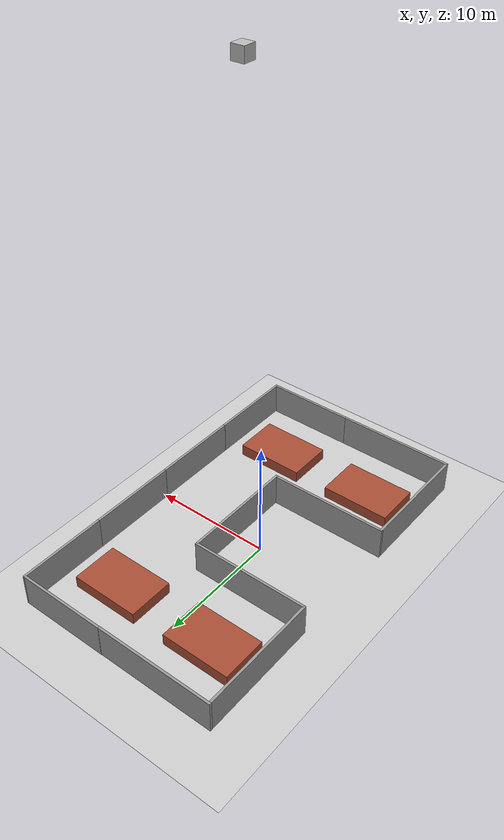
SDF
<sdf version="1.6">
 <world name="default">
  <plugin name="ros_link_attacher_plugin" filename="libgazebo_ros_link_attacher.so"/>
  <light name="sun" type="directional">
   <pose>0 0 10 0 -0 0</pose>
   <diffuse>0.8 0.8 0.8 1</diffuse>
   <specular>0.2 0.2 0.2 1</specular>
   <attenuation>
    <range>1000</range>
    <constant>0.9</constant>
    <linear>0.01</linear>
    <quadratic>0.001</quadratic>
   </attenuation>
   <direction>-0.5 0.1 -0.9</direction>
  </light>
  <model name="ground_plane">
   <static>1</static>
   <link name="link">
    <collision name="collision">
     <geometry><plane><normal>0 0 1</normal><size>100 100</size></plane></geometry>
     <surface>
      <contact><collide_bitmask>65535</collide_bitmask></contact>
      <friction><ode><mu>100</mu><mu2>50</mu2></ode></friction>
     </surface>
    </collision>
    <visual name="visual">
     <cast_shadows>0</cast_shadows>
     <geometry><plane><normal>0 0 1</normal><size>100 100</size></plane></geometry>
     <material>
      <script><uri>file://media/materials/scripts/gazebo.material</uri><name>Gazebo/Grey</name></script>
     </material>
    </visual>
   </link>
  </model>
  <gravity>0 0 -9.8</gravity>
  <magnetic_field>6e-06 2.3e-05 -4.2e-05</magnetic_field>
  <atmosphere type="adiabatic"/>
  <physics name="default_physics" default="0" type="ode">
   <max_step_size>0.001</max_step_size>
   <real_time_factor>1</real_time_factor>
   <real_time_update_rate>1000</real_time_update_rate>
  </physics>
  <scene><ambient>0.4 0.4 0.4 1</ambient><background>0.7 0.7 0.7 1</background><shadows>1</shadows></scene>
  <spherical_coordinates>
   <surface_model>EARTH_WGS84</surface_model>
   <latitude_deg>0</latitude_deg>
   <longitude_deg>0</longitude_deg>
   <elevation>0</elevation>
   <heading_deg>0</heading_deg>
  </spherical_coordinates>
  <model name="camera">
   <plugin name="ros_camera_1" filename="libROSLogicalCameraPlugin.so"/>
   <link name="camera::camera_link">
    <gravity>0</gravity>
    <inertial>
     <mass>0.1</mass>
     <inertia>
      <ixx>0.000166667</ixx>
      <iyy>0.000166667</iyy>
      <izz>0.000166667</izz>
      <ixy>0</ixy>
      <ixz>0</ixz>
      <iyz>0</iyz>
     </inertia>
    </inertial>
    <collision name="collision">
     <pose>0 0.02 0 0 0 -1.5708</pose>
     <geometry><box><size>1 1 1</size></box></geometry>
    </collision>
    <visual name="visual">
     <pose>0 0.02 0 0 0 -1.5708</pose>
     <geometry><box><size>1 1 1</size></box></geometry>
    </visual>
    <sensor name="logical_camera" type="logical_camera">
     <logical_camera>
      <near>0.2</near>
      <far>2</far>
      <horizontal_fov>0.9</horizontal_fov>
      <aspect_ratio>2</aspect_ratio>
     </logical_camera>
     <visualize>0</visualize>
     <always_on>1</always_on>
     <update_rate>10</update_rate>
     <topic>camera_1</topic>
    </sensor>
    <sensor name="camera" type="camera">
     <camera name="camera">
      <horizontal_fov>0.9</horizontal_fov>
      <image><width>1280</width><height>720</height></image>
      <clip><near>0.1</near><far>100</far></clip>
     </camera>
     <always_on>1</always_on>
     <update_rate>30</update_rate>
     <visualize>0</visualize>
     <plugin name="camera_controller" filename="libgazebo_ros_camera.so">
      <cameraName>camera_1</cameraName>
      <eventThreshold>10</eventThreshold>
      <cameraInfoTopicName>camera</cameraInfoTopicName>
     </plugin>
    </sensor>
    <pose>1.6102 -0.1089 38 3.14 1.57 3.14</pose>
   </link>
   <static>1</static>
  </model>
  <model name="grey_wall_1">
   <static>1</static>
   <link name="link">
    <pose>0 0 1.4 0 -0 0</pose>
    <collision name="collision"><geometry><box><size>7.5 0.2 2.8</size></box></geometry></collision>
    <visual name="visual">
     <cast_shadows>0</cast_shadows>
     <geometry><box><size>7.5 0.2 2.8</size></box></geometry>
     <material>
      <script>
       <uri>model://grey_wall/materials/scripts</uri>
       <uri>model://grey_wall/materials/textures</uri>
       <name>vrc/grey_wall</name>
      </script>
     </material>
    </visual>
   </link>
   <pose>6.09406 14.8892 0 0 -0 0</pose>
  </model>
  <model name="grey_wall_2">
   <static>1</static>
   <link name="link">
    <pose>0 0 1.4 0 -0 0</pose>
    <collision name="collision"><geometry><box><size>7.5 0.2 2.8</size></box></geometry></collision>
    <visual name="visual">
     <cast_shadows>0</cast_shadows>
     <geometry><box><size>7.5 0.2 2.8</size></box></geometry>
     <material>
      <script>
       <uri>model://grey_wall/materials/scripts</uri>
       <uri>model://grey_wall/materials/textures</uri>
       <name>vrc/grey_wall</name>
      </script>
     </material>
    </visual>
   </link>
   <pose>9.88422 3.73107 0 0 0 -1.5708</pose>
  </model>
  <model name="grey_wall_3">
   <static>1</static>
   <link name="link">
    <pose>0 0 1.4 0 -0 0</pose>
    <collision name="collision"><geometry><box><size>7.5 0.2 2.8</size></box></geometry></collision>
    <visual name="visual">
     <cast_shadows>0</cast_shadows>
     <geometry><box><size>7.5 0.2 2.8</size></box></geometry>
     <material>
      <script>
       <uri>model://grey_wall/materials/scripts</uri>
       <uri>model://grey_wall/materials/textures</uri>
       <name>vrc/grey_wall</name>
      </script>
     </material>
    </visual>
   </link>
   <pose>9.88361 -3.76988 0 0 0 -1.5708</pose>
  </model>
  <model name="grey_wall_4">
   <static>1</static>
   <link name="link">
    <pose>0 0 1.4 0 -0 0</pose>
    <collision name="collision"><geometry><box><size>7.5 0.2 2.8</size></box></geometry></collision>
    <visual name="visual">
     <cast_shadows>0</cast_shadows>
     <geometry><box><size>7.5 0.2 2.8</size></box></geometry>
     <material>
      <script>
       <uri>model://grey_wall/materials/scripts</uri>
       <uri>model://grey_wall/materials/textures</uri>
       <name>vrc/grey_wall</name>
      </script>
     </material>
    </visual>
   </link>
   <pose>9.88377 -11.2734 0 0 0 -1.5708</pose>
  </model>
  <model name="grey_wall_5">
   <static>1</static>
   <link name="link">
    <pose>0 0 1.4 0 -0 0</pose>
    <collision name="collision"><geometry><box><size>7.5 0.2 2.8</size></box></geometry></collision>
    <visual name="visual">
     <cast_shadows>0</cast_shadows>
     <geometry><box><size>7.5 0.2 2.8</size></box></geometry>
     <material>
      <script>
       <uri>model://grey_wall/materials/scripts</uri>
       <uri>model://grey_wall/materials/textures</uri>
       <name>vrc/grey_wall</name>
      </script>
     </material>
    </visual>
   </link>
   <pose>9.88758 11.2327 0 0 0 -1.5708</pose>
  </model>
  <model name="grey_wall_6">
   <static>1</static>
   <link name="link">
    <pose>0 0 1.4 0 -0 0</pose>
    <collision name="collision"><geometry><box><size>7.5 0.2 2.8</size></box></geometry></collision>
    <visual name="visual">
     <cast_shadows>0</cast_shadows>
     <geometry><box><size>7.5 0.2 2.8</size></box></geometry>
     <material>
      <script>
       <uri>model://grey_wall/materials/scripts</uri>
       <uri>model://grey_wall/materials/textures</uri>
       <name>vrc/grey_wall</name>
      </script>
     </material>
    </visual>
   </link>
   <pose>6.05241 -14.9248 0 0 -0 0</pose>
  </model>
  <model name="grey_wall_10_cm_1">
   <link name="link">
    <pose>0 0 1.4 0 -0 0</pose>
    <inertial>
     <mass>1</mass>
     <inertia><ixx>1</ixx><ixy>0</ixy><ixz>0</ixz><iyy>1</iyy><iyz>0</iyz><izz>1</izz></inertia>
    </inertial>
    <visual name="visual">
     <cast_shadows>0</cast_shadows>
     <geometry><box><size>9.8 0.2 2.8</size></box></geometry>
     <material>
      <script>
       <uri>model://grey_wall/materials/scripts</uri>
       <uri>model://grey_wall/materials/textures</uri>
       <name>vrc/grey_wall</name>
      </script>
      <shader type="pixel"><normal_map>__default__</normal_map></shader>
      <ambient>1 1 1 1</ambient>
      <diffuse>1 1 1 1</diffuse>
      <specular>0 0 0 1</specular>
      <emissive>0 0 0 1</emissive>
     </material>
    </visual>
    <collision name="collision">
     <geometry><box><size>9.8 0.2 2.8</size></box></geometry>
     <surface>
      <friction>
       <ode><mu>1</mu><mu2>1</mu2><fdir1>0 0 0</fdir1><slip1>0</slip1><slip2>0</slip2></ode>
       <torsional>
        <coefficient>1</coefficient>
        <patch_radius>0</patch_radius>
        <surface_radius>0</surface_radius>
        <use_patch_radius>1</use_patch_radius>
        <ode><slip>0</slip></ode>
       </torsional>
      </friction>
      <bounce><restitution_coefficient>0</restitution_coefficient><threshold>1e+06</threshold></bounce>
      <contact>
       <collide_without_contact>0</collide_without_contact>
       <collide_without_contact_bitmask>1</collide_without_contact_bitmask>
       <collide_bitmask>1</collide_bitmask>
       <ode>
        <soft_cfm>0</soft_cfm>
        <soft_erp>0.2</soft_erp>
        <kp>1e+13</kp>
        <kd>1</kd>
        <max_vel>0.01</max_vel>
        <min_depth>0</min_depth>
       </ode>
       <bullet>
        <split_impulse>1</split_impulse>
        <split_impulse_penetration_threshold>-0.01</split_impulse_penetration_threshold>
        <soft_cfm>0</soft_cfm>
        <soft_erp>0.2</soft_erp>
        <kp>1e+13</kp>
        <kd>1</kd>
       </bullet>
      </contact>
     </surface>
    </collision>
   </link>
   <static>1</static>
   <pose>2.3616 -0.279039 0 0 0 -1.5708</pose>
  </model>
  <model name="grey_wall_10_cm_2">
   <link name="link">
    <pose>0 0 1.4 0 -0 0</pose>
    <inertial>
     <mass>1</mass>
     <inertia><ixx>1</ixx><ixy>0</ixy><ixz>0</ixz><iyy>1</iyy><iyz>0</iyz><izz>1</izz></inertia>
    </inertial>
    <visual name="visual">
     <cast_shadows>0</cast_shadows>
     <geometry><box><size>10.25 0.2 2.8</size></box></geometry>
     <material>
      <script>
       <uri>model://grey_wall/materials/scripts</uri>
       <uri>model://grey_wall/materials/textures</uri>
       <name>vrc/grey_wall</name>
      </script>
      <shader type="pixel"><normal_map>__default__</normal_map></shader>
      <ambient>1 1 1 1</ambient>
      <diffuse>1 1 1 1</diffuse>
      <specular>0 0 0 1</specular>
      <emissive>0 0 0 1</emissive>
     </material>
    </visual>
    <collision name="collision">
     <geometry><box><size>10.25 0.2 2.8</size></box></geometry>
     <surface>
      <friction>
       <ode><mu>1</mu><mu2>1</mu2><fdir1>0 0 0</fdir1><slip1>0</slip1><slip2>0</slip2></ode>
       <torsional>
        <coefficient>1</coefficient>
        <patch_radius>0</patch_radius>
        <surface_radius>0</surface_radius>
        <use_patch_radius>1</use_patch_radius>
        <ode><slip>0</slip></ode>
       </torsional>
      </friction>
      <bounce><restitution_coefficient>0</restitution_coefficient><threshold>1e+06</threshold></bounce>
      <contact>
       <collide_without_contact>0</collide_without_contact>
       <collide_without_contact_bitmask>1</collide_without_contact_bitmask>
       <collide_bitmask>1</collide_bitmask>
       <ode>
        <soft_cfm>0</soft_cfm>
        <soft_erp>0.2</soft_erp>
        <kp>1e+13</kp>
        <kd>1</kd>
        <max_vel>0.01</max_vel>
        <min_depth>0</min_depth>
       </ode>
       <bullet>
        <split_impulse>1</split_impulse>
        <split_impulse_penetration_threshold>-0.01</split_impulse_penetration_threshold>
        <soft_cfm>0</soft_cfm>
        <soft_erp>0.2</soft_erp>
        <kp>1e+13</kp>
        <kd>1</kd>
       </bullet>
      </contact>
     </surface>
    </collision>
   </link>
   <static>1</static>
   <pose>-7.5361 9.66485 0 0 0 -1.5708</pose>
  </model>
  <model name="grey_wall_10_cm_3">
   <link name="link">
    <pose>0 0 1.4 0 -0 0</pose>
    <inertial>
     <mass>1</mass>
     <inertia><ixx>1</ixx><ixy>0</ixy><ixz>0</ixz><iyy>1</iyy><iyz>0</iyz><izz>1</izz></inertia>
    </inertial>
    <visual name="visual">
     <cast_shadows>0</cast_shadows>
     <geometry><box><size>10 0.2 2.8</size></box></geometry>
     <material>
      <script>
       <uri>model://grey_wall/materials/scripts</uri>
       <uri>model://grey_wall/materials/textures</uri>
       <name>vrc/grey_wall</name>
      </script>
      <shader type="pixel"><normal_map>__default__</normal_map></shader>
      <ambient>1 1 1 1</ambient>
      <diffuse>1 1 1 1</diffuse>
      <specular>0 0 0 1</specular>
      <emissive>0 0 0 1</emissive>
     </material>
    </visual>
    <collision name="collision">
     <geometry><box><size>10 0.2 2.8</size></box></geometry>
     <surface>
      <friction>
       <ode><mu>1</mu><mu2>1</mu2><fdir1>0 0 0</fdir1><slip1>0</slip1><slip2>0</slip2></ode>
       <torsional>
        <coefficient>1</coefficient>
        <patch_radius>0</patch_radius>
        <surface_radius>0</surface_radius>
        <use_patch_radius>1</use_patch_radius>
        <ode><slip>0</slip></ode>
       </torsional>
      </friction>
      <bounce><restitution_coefficient>0</restitution_coefficient><threshold>1e+06</threshold></bounce>
      <contact>
       <collide_without_contact>0</collide_without_contact>
       <collide_without_contact_bitmask>1</collide_without_contact_bitmask>
       <collide_bitmask>1</collide_bitmask>
       <ode>
        <soft_cfm>0</soft_cfm>
        <soft_erp>0.2</soft_erp>
        <kp>1e+13</kp>
        <kd>1</kd>
        <max_vel>0.01</max_vel>
        <min_depth>0</min_depth>
       </ode>
       <bullet>
        <split_impulse>1</split_impulse>
        <split_impulse_penetration_threshold>-0.01</split_impulse_penetration_threshold>
        <soft_cfm>0</soft_cfm>
        <soft_erp>0.2</soft_erp>
        <kp>1e+13</kp>
        <kd>1</kd>
       </bullet>
      </contact>
     </surface>
    </collision>
   </link>
   <static>1</static>
   <pose>-2.64541 14.8608 0 0 0 -3.139</pose>
  </model>
  <model name="grey_wall_10_cm_4">
   <link name="link">
    <pose>0 0 1.4 0 -0 0</pose>
    <inertial>
     <mass>1</mass>
     <inertia><ixx>1</ixx><ixy>0</ixy><ixz>0</ixz><iyy>1</iyy><iyz>0</iyz><izz>1</izz></inertia>
    </inertial>
    <visual name="visual">
     <cast_shadows>0</cast_shadows>
     <geometry><box><size>10 0.2 2.8</size></box></geometry>
     <material>
      <script>
       <uri>model://grey_wall/materials/scripts</uri>
       <uri>model://grey_wall/materials/textures</uri>
       <name>vrc/grey_wall</name>
      </script>
      <shader type="pixel"><normal_map>__default__</normal_map></shader>
      <ambient>1 1 1 1</ambient>
      <diffuse>1 1 1 1</diffuse>
      <specular>0 0 0 1</specular>
      <emissive>0 0 0 1</emissive>
     </material>
    </visual>
    <collision name="collision">
     <geometry><box><size>10 0.2 2.8</size></box></geometry>
     <surface>
      <friction>
       <ode><mu>1</mu><mu2>1</mu2><fdir1>0 0 0</fdir1><slip1>0</slip1><slip2>0</slip2></ode>
       <torsional>
        <coefficient>1</coefficient>
        <patch_radius>0</patch_radius>
        <surface_radius>0</surface_radius>
        <use_patch_radius>1</use_patch_radius>
        <ode><slip>0</slip></ode>
       </torsional>
      </friction>
      <bounce><restitution_coefficient>0</restitution_coefficient><threshold>1e+06</threshold></bounce>
      <contact>
       <collide_without_contact>0</collide_without_contact>
       <collide_without_contact_bitmask>1</collide_without_contact_bitmask>
       <collide_bitmask>1</collide_bitmask>
       <ode>
        <soft_cfm>0</soft_cfm>
        <soft_erp>0.2</soft_erp>
        <kp>1e+13</kp>
        <kd>1</kd>
        <max_vel>0.01</max_vel>
        <min_depth>0</min_depth>
       </ode>
       <bullet>
        <split_impulse>1</split_impulse>
        <split_impulse_penetration_threshold>-0.01</split_impulse_penetration_threshold>
        <soft_cfm>0</soft_cfm>
        <soft_erp>0.2</soft_erp>
        <kp>1e+13</kp>
        <kd>1</kd>
       </bullet>
      </contact>
     </surface>
    </collision>
   </link>
   <static>1</static>
   <pose>-7.62656 -10.0466 0 0 0 -1.5708</pose>
  </model>
  <model name="grey_wall_10_cm_5">
   <link name="link">
    <pose>0 0 1.4 0 -0 0</pose>
    <inertial>
     <mass>1</mass>
     <inertia><ixx>1</ixx><ixy>0</ixy><ixz>0</ixz><iyy>1</iyy><iyz>0</iyz><izz>1</izz></inertia>
    </inertial>
    <visual name="visual">
     <cast_shadows>0</cast_shadows>
     <geometry><box><size>10 0.2 2.8</size></box></geometry>
     <material>
      <script>
       <uri>model://grey_wall/materials/scripts</uri>
       <uri>model://grey_wall/materials/textures</uri>
       <name>vrc/grey_wall</name>
      </script>
      <shader type="pixel"><normal_map>__default__</normal_map></shader>
      <ambient>1 1 1 1</ambient>
      <diffuse>1 1 1 1</diffuse>
      <specular>0 0 0 1</specular>
      <emissive>0 0 0 1</emissive>
     </material>
    </visual>
    <collision name="collision">
     <geometry><box><size>10 0.2 2.8</size></box></geometry>
     <surface>
      <friction>
       <ode><mu>1</mu><mu2>1</mu2><fdir1>0 0 0</fdir1><slip1>0</slip1><slip2>0</slip2></ode>
       <torsional>
        <coefficient>1</coefficient>
        <patch_radius>0</patch_radius>
        <surface_radius>0</surface_radius>
        <use_patch_radius>1</use_patch_radius>
        <ode><slip>0</slip></ode>
       </torsional>
      </friction>
      <bounce><restitution_coefficient>0</restitution_coefficient><threshold>1e+06</threshold></bounce>
      <contact>
       <collide_without_contact>0</collide_without_contact>
       <collide_without_contact_bitmask>1</collide_without_contact_bitmask>
       <collide_bitmask>1</collide_bitmask>
       <ode>
        <soft_cfm>0</soft_cfm>
        <soft_erp>0.2</soft_erp>
        <kp>1e+13</kp>
        <kd>1</kd>
        <max_vel>0.01</max_vel>
        <min_depth>0</min_depth>
       </ode>
       <bullet>
        <split_impulse>1</split_impulse>
        <split_impulse_penetration_threshold>-0.01</split_impulse_penetration_threshold>
        <soft_cfm>0</soft_cfm>
        <soft_erp>0.2</soft_erp>
        <kp>1e+13</kp>
        <kd>1</kd>
       </bullet>
      </contact>
     </surface>
    </collision>
   </link>
   <static>1</static>
   <pose>-2.54396 4.65174 0 0 0 -3.139</pose>
  </model>
  <model name="grey_wall_10_cm_6">
   <link name="link">
    <pose>0 0 1.4 0 -0 0</pose>
    <inertial>
     <mass>1</mass>
     <inertia><ixx>1</ixx><ixy>0</ixy><ixz>0</ixz><iyy>1</iyy><iyz>0</iyz><izz>1</izz></inertia>
    </inertial>
    <visual name="visual">
     <cast_shadows>0</cast_shadows>
     <geometry><box><size>10 0.2 2.8</size></box></geometry>
     <material>
      <script>
       <uri>model://grey_wall/materials/scripts</uri>
       <uri>model://grey_wall/materials/textures</uri>
       <name>vrc/grey_wall</name>
      </script>
      <shader type="pixel"><normal_map>__default__</normal_map></shader>
      <ambient>1 1 1 1</ambient>
      <diffuse>1 1 1 1</diffuse>
      <specular>0 0 0 1</specular>
      <emissive>0 0 0 1</emissive>
     </material>
    </visual>
    <collision name="collision">
     <geometry><box><size>10 0.2 2.8</size></box></geometry>
     <surface>
      <friction>
       <ode><mu>1</mu><mu2>1</mu2><fdir1>0 0 0</fdir1><slip1>0</slip1><slip2>0</slip2></ode>
       <torsional>
        <coefficient>1</coefficient>
        <patch_radius>0</patch_radius>
        <surface_radius>0</surface_radius>
        <use_patch_radius>1</use_patch_radius>
        <ode><slip>0</slip></ode>
       </torsional>
      </friction>
      <bounce><restitution_coefficient>0</restitution_coefficient><threshold>1e+06</threshold></bounce>
      <contact>
       <collide_without_contact>0</collide_without_contact>
       <collide_without_contact_bitmask>1</collide_without_contact_bitmask>
       <collide_bitmask>1</collide_bitmask>
       <ode>
        <soft_cfm>0</soft_cfm>
        <soft_erp>0.2</soft_erp>
        <kp>1e+13</kp>
        <kd>1</kd>
        <max_vel>0.01</max_vel>
        <min_depth>0</min_depth>
       </ode>
       <bullet>
        <split_impulse>1</split_impulse>
        <split_impulse_penetration_threshold>-0.01</split_impulse_penetration_threshold>
        <soft_cfm>0</soft_cfm>
        <soft_erp>0.2</soft_erp>
        <kp>1e+13</kp>
        <kd>1</kd>
       </bullet>
      </contact>
     </surface>
    </collision>
   </link>
   <static>1</static>
   <pose>-2.73605 -5.09169 0 0 0 -3.139</pose>
  </model>
  <model name="grey_wall_10_cm_7">
   <link name="link">
    <pose>0 0 1.4 0 -0 0</pose>
    <inertial>
     <mass>1</mass>
     <inertia><ixx>1</ixx><ixy>0</ixy><ixz>0</ixz><iyy>1</iyy><iyz>0</iyz><izz>1</izz></inertia>
    </inertial>
    <visual name="visual">
     <cast_shadows>0</cast_shadows>
     <geometry><box><size>10 0.2 2.8</size></box></geometry>
     <material>
      <script>
       <uri>model://grey_wall/materials/scripts</uri>
       <uri>model://grey_wall/materials/textures</uri>
       <name>vrc/grey_wall</name>
      </script>
      <shader type="pixel"><normal_map>__default__</normal_map></shader>
      <ambient>1 1 1 1</ambient>
      <diffuse>1 1 1 1</diffuse>
      <specular>0 0 0 1</specular>
      <emissive>0 0 0 1</emissive>
     </material>
    </visual>
    <collision name="collision">
     <geometry><box><size>10 0.2 2.8</size></box></geometry>
     <surface>
      <friction>
       <ode><mu>1</mu><mu2>1</mu2><fdir1>0 0 0</fdir1><slip1>0</slip1><slip2>0</slip2></ode>
       <torsional>
        <coefficient>1</coefficient>
        <patch_radius>0</patch_radius>
        <surface_radius>0</surface_radius>
        <use_patch_radius>1</use_patch_radius>
        <ode><slip>0</slip></ode>
       </torsional>
      </friction>
      <bounce><restitution_coefficient>0</restitution_coefficient><threshold>1e+06</threshold></bounce>
      <contact>
       <collide_without_contact>0</collide_without_contact>
       <collide_without_contact_bitmask>1</collide_without_contact_bitmask>
       <collide_bitmask>1</collide_bitmask>
       <ode>
        <soft_cfm>0</soft_cfm>
        <soft_erp>0.2</soft_erp>
        <kp>1e+13</kp>
        <kd>1</kd>
        <max_vel>0.01</max_vel>
        <min_depth>0</min_depth>
       </ode>
       <bullet>
        <split_impulse>1</split_impulse>
        <split_impulse_penetration_threshold>-0.01</split_impulse_penetration_threshold>
        <soft_cfm>0</soft_cfm>
        <soft_erp>0.2</soft_erp>
        <kp>1e+13</kp>
        <kd>1</kd>
       </bullet>
      </contact>
     </surface>
    </collision>
   </link>
   <static>1</static>
   <pose>-2.68506 -14.9412 0 0 0 -3.139</pose>
  </model>
  <model name="unit_box_1">
   <pose>5.39968 9.67116 0.49938 -0.000322 -0 2e-06</pose>
   <link name="link">
    <inertial>
     <mass>1</mass>
     <inertia>
      <ixx>0.166667</ixx>
      <ixy>0</ixy>
      <ixz>0</ixz>
      <iyy>0.166667</iyy>
      <iyz>0</iyz>
      <izz>0.166667</izz>
     </inertia>
    </inertial>
    <collision name="collision"><geometry><box><size>5.83976 3.849 1</size></box></geometry></collision>
    <visual name="visual">
     <geometry><box><size>5.83976 3.849 1</size></box></geometry>
     <material>
      <script><name>Gazebo/Bricks</name><uri>file://media/materials/scripts/gazebo.material</uri></script>
     </material>
    </visual>
   </link>
  </model>
  <model name="unit_box_2">
   <pose>-3.33245 9.67536 0.49938 0.000322 0 1e-06</pose>
   <link name="link">
    <inertial>
     <mass>1</mass>
     <inertia>
      <ixx>0.166667</ixx>
      <ixy>0</ixy>
      <ixz>0</ixz>
      <iyy>0.166667</iyy>
      <iyz>0</iyz>
      <izz>0.166667</izz>
     </inertia>
    </inertial>
    <collision name="collision"><geometry><box><size>5.83976 3.849 1</size></box></geometry></collision>
    <visual name="visual">
     <geometry><box><size>5.83976 3.849 1</size></box></geometry>
     <material>
      <script><name>Gazebo/Bricks</name><uri>file://media/materials/scripts/gazebo.material</uri></script>
     </material>
    </visual>
   </link>
  </model>
  <model name="unit_box_3">
   <pose>5.39968 -10.0089 0.49938 -0.000322 -0 1e-06</pose>
   <link name="link">
    <inertial>
     <mass>1</mass>
     <inertia>
      <ixx>0.166667</ixx>
      <ixy>0</ixy>
      <ixz>0</ixz>
      <iyy>0.166667</iyy>
      <iyz>0</iyz>
      <izz>0.166667</izz>
     </inertia>
    </inertial>
    <collision name="collision"><geometry><box><size>5.83976 3.849 1</size></box></geometry></collision>
    <visual name="visual">
     <geometry><box><size>5.83976 3.849 1</size></box></geometry>
     <material>
      <script><name>Gazebo/Bricks</name><uri>file://media/materials/scripts/gazebo.material</uri></script>
     </material>
    </visual>
   </link>
  </model>
  <model name="unit_box_4">
   <pose>-3.33245 -10.0089 0.49938 -0.000322 -0 1e-06</pose>
   <link name="link">
    <inertial>
     <mass>1</mass>
     <inertia>
      <ixx>0.166667</ixx>
      <ixy>0</ixy>
      <ixz>0</ixz>
      <iyy>0.166667</iyy>
      <iyz>0</iyz>
      <izz>0.166667</izz>
     </inertia>
    </inertial>
    <collision name="collision"><geometry><box><size>5.83976 3.849 1</size></box></geometry></collision>
    <visual name="visual">
     <geometry><box><size>5.83976 3.849 1</size></box></geometry>
     <material>
      <script><name>Gazebo/Bricks</name><uri>file://media/materials/scripts/gazebo.material</uri></script>
     </material>
    </visual>
   </link>
  </model>
  <model name="animated_box_collision_model">
   <static>true</static>
   <link name="link"><collision name="link"><geometry><box><size>1 1 1</size></box></geometry></collision></link>
  </model>
 </world>
</sdf>
